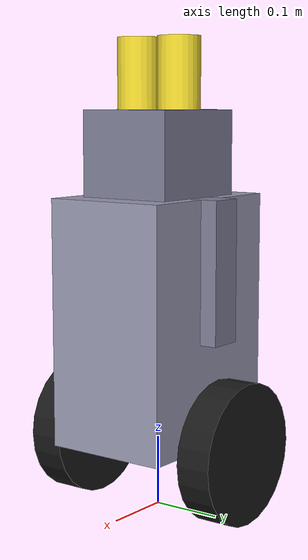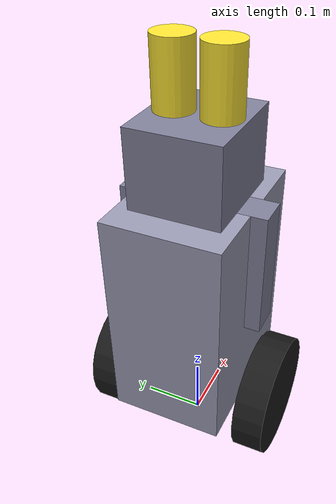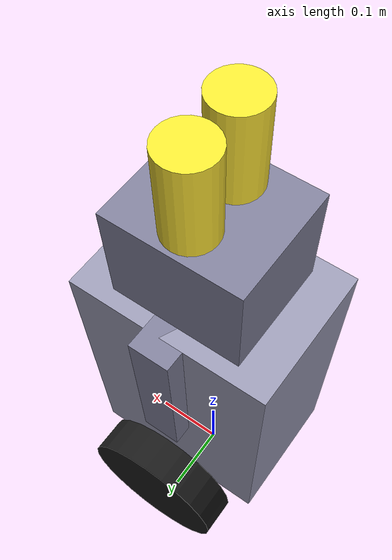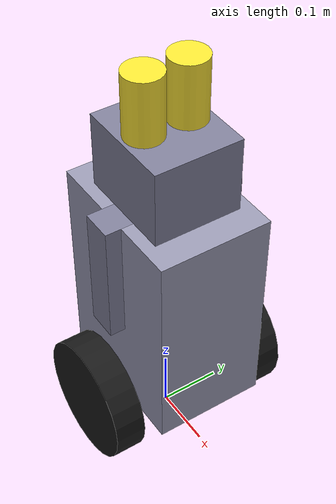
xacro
<?xml version="1.0"?>
<robot xmlns:xacro="http://ros.org/wiki/xacro" name="robot_hare_wheel_bot">

  <!-- === CONSTANTS === -->
  <xacro:property name="base_x" value="0.25"/>
  <xacro:property name="base_y" value="0.18"/>
  <xacro:property name="base_z" value="0.35"/>
  <xacro:property name="base_origin_z" value="0.275"/>

  <xacro:property name="head_x" value="0.16"/>
  <xacro:property name="head_y" value="0.14"/>
  <xacro:property name="head_z" value="0.12"/>
  <xacro:property name="head_origin_z" value="0.06"/>

  <xacro:property name="ear_r" value="0.03"/>
  <xacro:property name="ear_l" value="0.12"/>
  <xacro:property name="ear_y" value="0.035"/>
  <xacro:property name="ear_z" value="0.16"/>

  <xacro:property name="arm_x" value="0.05"/>
  <xacro:property name="arm_y" value="0.05"/>
  <xacro:property name="arm_z" value="0.20"/>
  <xacro:property name="arm_y_offset" value="0.09"/>
  <xacro:property name="arm_origin_z" value="0.35"/>

  <xacro:property name="wheel_r" value="0.10"/>
  <xacro:property name="wheel_w" value="0.05"/>
  <xacro:property name="wheel_y_offset" value="0.13"/>
  <xacro:property name="wheel_origin_z" value="0.10"/>

  <!-- === MATERIALS (defined once, referenced everywhere) === -->
  <material name="body_mat"><color rgba="0.6 0.6 0.7 1.0"/></material>
  <material name="head_mat"><color rgba="0.5 0.5 0.6 1.0"/></material>
  <material name="arm_mat"><color rgba="0.5 0.5 0.6 1.0"/></material>
  <material name="ear_mat"><color rgba="1.0 0.9 0.2 1.0"/></material>
  <material name="wheel_mat"><color rgba="0.1 0.1 0.1 1.0"/></material>

  <!-- === BASE LINK === -->
  <link name="base_link">
    <inertial>
      <origin xyz="0 0 ${base_origin_z}"/>
      <mass value="3.5"/>
      <inertia ixx="0.12" ixy="0" ixz="0"
               iyy="0.12" iyz="0"
               izz="0.15"/>
    </inertial>

    <visual>
      <origin xyz="0 0 ${base_origin_z}"/>
      <geometry><box size="${base_x} ${base_y} ${base_z}"/></geometry>
      <material name="body_mat"/>
    </visual>

    <collision>
      <origin xyz="0 0 ${base_origin_z}"/>
      <geometry><box size="${base_x} ${base_y} ${base_z}"/></geometry>
    </collision>
  </link>

  <!-- === HEAD === -->
  <joint name="head_joint" type="fixed">
    <parent link="base_link"/>
    <child  link="head_link"/>
    <origin xyz="0 0 0.45"/>
  </joint>

  <link name="head_link">
    <inertial>
      <origin xyz="0 0 0"/>
      <mass value="1.0"/>
      <inertia ixx="0.02" ixy="0" ixz="0"
               iyy="0.02" iyz="0"
               izz="0.02"/>
    </inertial>

    <visual>
      <origin xyz="0 0 ${head_origin_z}"/>
      <geometry><box size="${head_x} ${head_y} ${head_z}"/></geometry>
      <material name="head_mat"/>
    </visual>

    <collision>
      <origin xyz="0 0 ${head_origin_z}"/>
      <geometry><box size="${head_x} ${head_y} ${head_z}"/></geometry>
    </collision>
  </link>

  <!-- === EAR MACRO === -->
  <xacro:macro name="ear" params="name ysign">
    <joint name="${name}_joint" type="fixed">
      <parent link="head_link"/>
      <child  link="${name}"/>
      <origin xyz="0 0 0"/>
    </joint>

    <link name="${name}">
      <!-- добавлено inertial для physical properties -->
      <inertial>
        <origin xyz="0 0 0"/>
        <mass value="0.1"/>
        <inertia ixx="0.0002" ixy="0" ixz="0"
                 iyy="0.0002" iyz="0"
                 izz="0.0001"/>
      </inertial>

      <visual>
        <origin xyz="0 ${ysign*ear_y} ${ear_z}"/>
        <geometry><cylinder radius="${ear_r}" length="${ear_l}"/></geometry>
        <material name="ear_mat"/>
      </visual>

      <collision>
        <origin xyz="0 ${ysign*ear_y} ${ear_z}"/>
        <geometry><cylinder radius="${ear_r}" length="${ear_l}"/></geometry>
      </collision>
    </link>
  </xacro:macro>

  <xacro:ear name="left_ear"  ysign="1"/>
  <xacro:ear name="right_ear" ysign="-1"/>

  <!-- === ARM MACRO === -->
  <xacro:macro name="arm" params="name ysign">
    <joint name="${name}_joint" type="fixed">
      <parent link="base_link"/>
      <child  link="${name}"/>
      <origin xyz="0 0 0"/>
    </joint>

    <link name="${name}">
      <inertial>
        <origin xyz="0 0 0"/>
        <mass value="0.3"/>
        <inertia ixx="0.005" ixy="0" ixz="0"
                 iyy="0.005" iyz="0"
                 izz="0.005"/>
      </inertial>

      <visual>
        <origin xyz="0 ${ysign*arm_y_offset} ${arm_origin_z}"/>
        <geometry><box size="${arm_x} ${arm_y} ${arm_z}"/></geometry>
        <material name="arm_mat"/>
      </visual>

      <collision>
        <origin xyz="0 ${ysign*arm_y_offset} ${arm_origin_z}"/>
        <geometry><box size="${arm_x} ${arm_y} ${arm_z}"/></geometry>
      </collision>
    </link>
  </xacro:macro>

  <xacro:arm name="left_arm"  ysign="1"/>
  <xacro:arm name="right_arm" ysign="-1"/>

  <!-- === WHEEL MACRO === -->
  <xacro:macro name="wheel" params="side ysign">
    <joint name="${side}_wheel_joint" type="continuous">
      <parent link="base_link"/>
      <child  link="${side}_wheel_link"/>
      <origin xyz="0 ${ysign*wheel_y_offset} ${wheel_origin_z}"/>
      <axis xyz="0 1 0"/>
    </joint>

    <link name="${side}_wheel_link">
      <inertial>
        <origin xyz="0 0 0"/>
        <mass value="0.4"/>
        <inertia ixx="0.008" ixy="0" ixz="0"
                 iyy="0.008" iyz="0"
                 izz="0.008"/>
      </inertial>

      <visual>
        <origin xyz="0 0 0" rpy="1.5708 0 0"/>
        <geometry><cylinder radius="${wheel_r}" length="${wheel_w}"/></geometry>
        <material name="wheel_mat"/>
      </visual>

      <collision>
        <origin xyz="0 0 0" rpy="1.5708 0 0"/>
        <geometry><cylinder radius="${wheel_r}" length="${wheel_w}"/></geometry>
      </collision>
    </link>
  </xacro:macro>

  <xacro:wheel side="left"  ysign="1"/>
  <xacro:wheel side="right" ysign="-1"/>

</robot>
